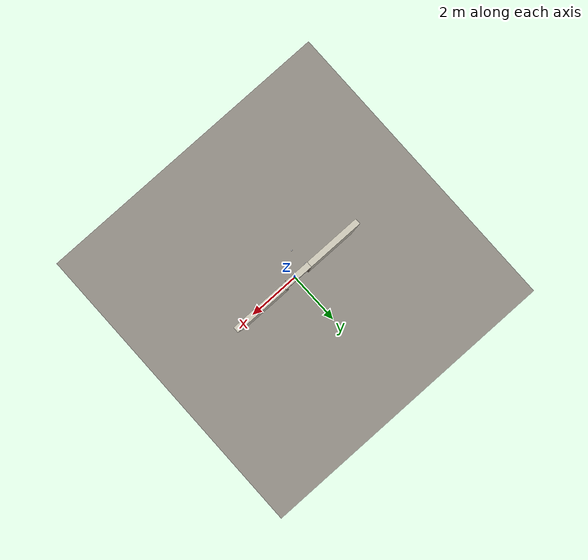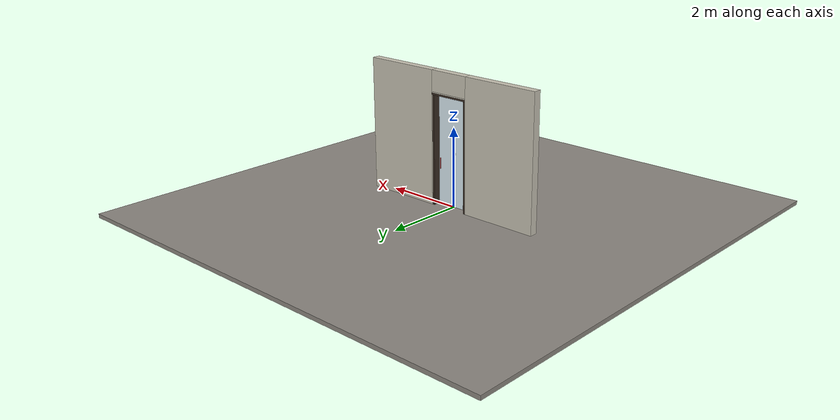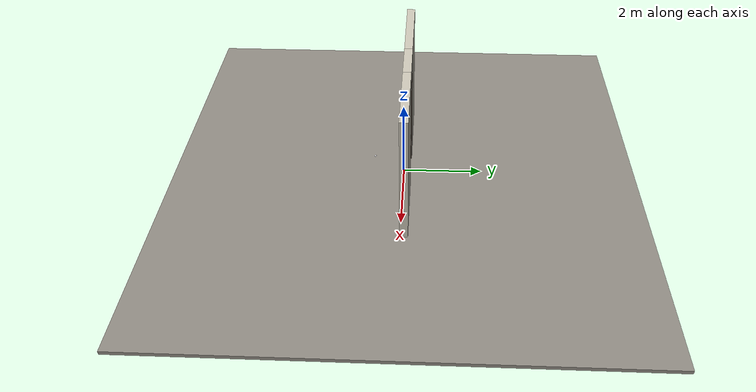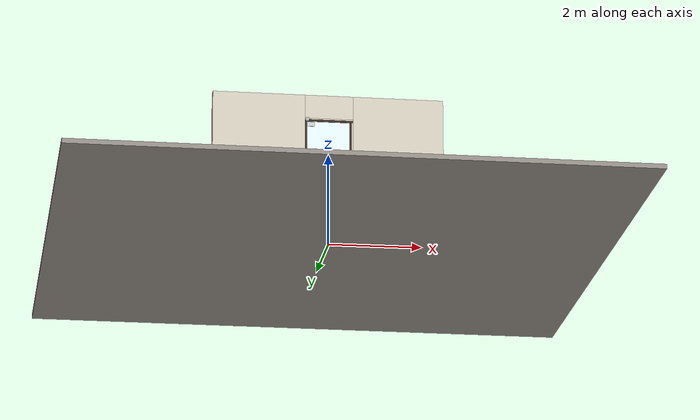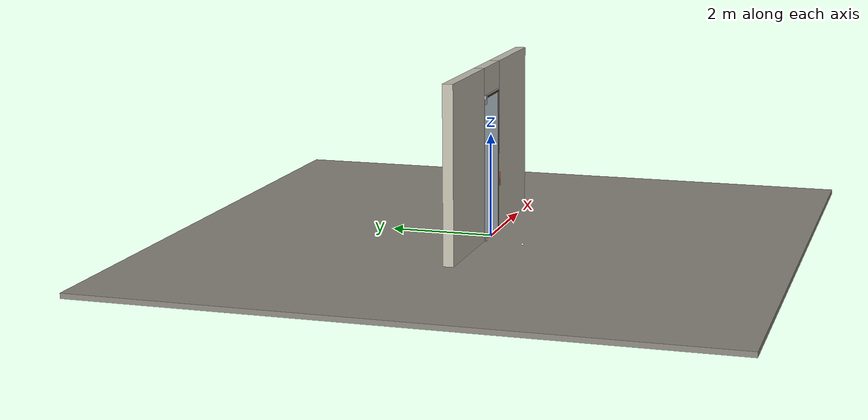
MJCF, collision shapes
<?xml version="1.0" ?>
<mujoco model="db0411_swing_single_full">
  <compiler angle="radian" meshdir="../../hardware" texturedir="../../textures" autolimits="true" inertiafromgeom="false"/>
  <option timestep="0.002" integrator="implicitfast" cone="elliptic" impratio="10" noslip_iterations="3">
    <flag multiccd="enable"/>
  </option>
  <size memory="16M"/>
  <default>
    <geom condim="4" solref="0.005 1" solimp="0.95 0.99 0.001"/>
    <joint solreflimit="0.005 1" solimplimit="0.95 0.99 0.001"/>
    <tendon solreflimit="0.005 1"/>
    <equality solref="0.002 1"/>
  </default>
  <visual>
    <headlight ambient="0.4 0.4 0.4" diffuse="0.7 0.7 0.7" specular="0.2 0.2 0.2"/>
    <quality shadowsize="4096"/>
    <map znear="0.01" zfar="60"/>
  </visual>
  <asset>
    <mesh name="exit_sign_a6449bfa2c" file="exit_sign_a6449bfa2c.obj"/>
    <mesh name="pull_f8d79d6331" file="pull_f8d79d6331.obj"/>
    <material name="mat_floor" rgba="0.55 0.53 0.5 1" specular="0.2" shininess="0.15" reflectance="0"/>
    <material name="mat_wall" rgba="0.78 0.76 0.7 1" specular="0.2" shininess="0.1" reflectance="0"/>
    <material name="mat_leaf" rgba="0.85 0.92 0.95 0.25" specular="0.2" shininess="0.95" reflectance="0.1"/>
    <material name="mat_glass_leaf" rgba="0.85 0.92 0.95 0.25" specular="0.2" shininess="0.95" reflectance="0.1"/>
    <material name="mat_patch" rgba="0.75 0.76 0.77 1" specular="0.8" shininess="0.65" reflectance="0.4"/>
    <material name="mat_hinge" rgba="0.65 0.66 0.68 1" specular="0.74" shininess="0.5" reflectance="0.36"/>
    <material name="mat_op_stainless" rgba="0.75 0.76 0.77 1" specular="0.8" shininess="0.65" reflectance="0.4"/>
    <material name="mat_frame" rgba="0.22 0.17 0.13 1" specular="0.8" shininess="0.6" reflectance="0.4"/>
    <material name="mat_closer" rgba="0.22 0.17 0.13 1" specular="0.8" shininess="0.6" reflectance="0.4"/>
    <material name="mat_exit_sign" rgba="0.85 0.1 0.1 1" specular="0.2" shininess="0.6" reflectance="0"/>
    <material name="mat_sign_bracket" rgba="0.8 0.81 0.83 1" specular="0.8" shininess="0.6" reflectance="0.4"/>
    <material name="mat_sign" rgba="0.75 0.76 0.77 1" specular="0.8" shininess="0.65" reflectance="0.4"/>
    <material name="mat_stop" rgba="0.9 0.9 0.92 1" specular="0.8" shininess="0.9" reflectance="0.4"/>
    <texture name="skybox" type="skybox" builtin="gradient" rgb1="0.6 0.7 0.85" rgb2="0.9 0.92 0.95" width="256" height="256"/>
  </asset>
  <worldbody>
    <light name="sun" pos="1.5 -2.5 4" dir="-0.3 0.5 -0.8" directional="true" diffuse="0.8 0.8 0.8" specular="0.3 0.3 0.3" castshadow="true"/>
    <light name="fill" pos="-1.5 2.5 3" dir="0.3 -0.5 -0.7" directional="true" diffuse="0.35 0.35 0.4" castshadow="false"/>
    <camera name="robot_view" pos="0 -3.12175 2.27645" xyaxes="1 0 0 0 0.26963 0.962964" fovy="52"/>
    <camera name="far_view" pos="0 3.29575 2.27645" xyaxes="-1 0 0 0 -0.26963 0.962964" fovy="52"/>
    <camera name="iso" pos="2.43865 -2.60835 2.78985" xyaxes="0.741536 0.670913 0 -0.242917 0.268487 0.932151" fovy="46"/>
    <camera name="detail_handle" pos="0.5335 -0.881 1.347" xyaxes="0.97561 0.219512 0 -0.070934 0.315262 0.94635" fovy="38"/>
    <geom name="floor" type="box" size="6 6 0.05" pos="0 0 -0.05" material="mat_floor" group="0" contype="1" conaffinity="1" friction="0.8 0.005 0.0001" density="2400"/>
    <geom name="wall_left" type="box" size="0.99675 0.1 1.678" pos="-1.50325 0.087 1.678" material="mat_wall" group="0" contype="1" conaffinity="1" friction="0.6 0.005 0.0001" density="800"/>
    <geom name="wall_right" type="box" size="0.98175 0.1 1.678" pos="1.51825 0.087 1.678" material="mat_wall" group="0" contype="1" conaffinity="1" friction="0.6 0.005 0.0001" density="800"/>
    <geom name="wall_header" type="box" size="0.5215 0.1 0.2625" pos="0.015 0.087 3.0935" material="mat_wall" group="0" contype="1" conaffinity="1" friction="0.6 0.005 0.0001" density="800"/>
    <geom name="pivot_bottom_socket" type="box" size="0.035 0.035 0.0085" pos="-0.4585 -0.013 -0.0015" material="mat_hinge" group="1" contype="0" conaffinity="0" density="7850"/>
    <geom name="pivot_top_bracket" type="box" size="0.035 0.035 0.0355" pos="-0.4585 -0.013 2.7955" material="mat_hinge" group="1" contype="0" conaffinity="0" density="7850"/>
    <geom name="jamb_hinge" type="box" size="0.0225 0.1 1.378" pos="-0.484 0.087 1.378" material="mat_frame" group="0" contype="1" conaffinity="1" friction="0.6 0.005 0.0001" density="300"/>
    <geom name="jamb_strike" type="box" size="0.0225 0.1 1.378" pos="0.484 0.087 1.378" material="mat_frame" group="0" contype="1" conaffinity="1" friction="0.6 0.005 0.0001" density="300"/>
    <geom name="stud_strike" type="box" size="0.015 0.1 1.378" pos="0.5215 0.087 1.378" material="mat_wall" group="0" contype="1" conaffinity="1" friction="0.6 0.005 0.0001" density="500"/>
    <geom name="jamb_head" type="box" size="0.5215 0.1 0.0225" pos="0.015 0.087 2.7785" material="mat_frame" group="0" contype="1" conaffinity="1" friction="0.6 0.005 0.0001" density="300"/>
    <geom name="head_stud" type="box" size="0.5215 0.1 0.015" pos="0.015 0.087 2.816" material="mat_wall" group="0" contype="1" conaffinity="1" friction="0.6 0.005 0.0001" density="500"/>
    <geom name="auto_operator_header" type="box" size="0.34 0.055 0.055" pos="0 0.071 2.827" material="mat_closer" group="0" contype="1" conaffinity="1" friction="0.6 0.005 0.0001" density="1500"/>
    <geom name="exit_sign" type="mesh" mesh="exit_sign_a6449bfa2c" pos="0 0.15 3.056" material="mat_exit_sign" group="2" contype="0" conaffinity="0" density="500"/>
    <geom name="exit_sign_bracket" type="box" size="0.05775 0.00875 0.063" pos="0 0.15 2.8935" material="mat_sign_bracket" group="2" contype="0" conaffinity="0" density="7850"/>
    <geom name="floor_stop_dome" type="sphere" size="0.025" pos="-0.546397 -0.788189 0" material="mat_stop" group="0" contype="1" conaffinity="1" friction="0.6 0.005 0.0001" density="7000"/>
    <site name="approach_point" pos="0 -1.5 0" quat="1 0 0 0" size="0.05" rgba="0.2 0.9 0.2 0.5" group="4"/>
    <site name="goal_point" pos="0 1.5 0" quat="1 0 0 0" size="0.05" rgba="0.2 0.9 0.2 0.5" group="4"/>
    <site name="door_plane_center" pos="0 0 1.378" quat="1 0 0 0" size="0.02" rgba="0.2 0.9 0.2 0.5" group="4"/>
    <body name="leaf" pos="-0.4615 0 0">
      <inertial pos="0.568266 0.001914 1.360405" mass="87.46306" quat="0.526949 0.525774 0.470109 -0.47422" diaginertia="6.235907936 46.036257694 51.926704878"/>
      <joint name="leaf_hinge" type="hinge" axis="0 0 -1" pos="0.003 -0.013 0" limited="true" range="0 1.658063" solreflimit="0.02 1" damping="15.345723" frictionloss="2.083662" stiffness="18.060903" springref="-2.335431" armature="0.02"/>
      <geom name="leaf_glass" type="box" size="0.457 0.006 1.3715" pos="0.463 0 1.3805" material="mat_glass_leaf" group="0" contype="1" conaffinity="1" friction="0.4 0.005 0.0001" density="1"/>
      <geom name="leaf_patch_bot" type="box" size="0.08 0.014 0.05" pos="0.086 0 0.069" material="mat_patch" group="1" contype="0" conaffinity="0" density="1"/>
      <geom name="leaf_patch_top" type="box" size="0.08 0.014 0.05" pos="0.086 0 2.692" material="mat_patch" group="1" contype="0" conaffinity="0" density="1"/>
      <geom name="pivot_bottom" type="cylinder" size="0.014 0.004" pos="0.003 -0.013 0.004" material="mat_hinge" group="1" contype="0" conaffinity="0" density="7850"/>
      <geom name="pivot_top" type="cylinder" size="0.014 0.004" pos="0.003 -0.013 2.756" material="mat_hinge" group="1" contype="0" conaffinity="0" density="7850"/>
      <geom name="leaf_pull_n" type="mesh" mesh="pull_f8d79d6331" pos="0.815 -0.006 1.067" quat="0.707107 0.707107 0 0" material="mat_op_stainless" group="1" contype="0" conaffinity="0" density="3000"/>
      <geom name="leaf_pull_col_n" type="capsule" size="0.0125 0.13" pos="0.815 -0.081 1.067" material="mat_op_stainless" group="3" contype="1" conaffinity="1" rgba="0.8 0.3 0.3 0.25" friction="0.7 0.01 0.0001" density="3000"/>
      <geom name="leaf_pull_p" type="mesh" mesh="pull_f8d79d6331" pos="0.815 0.006 1.067" quat="-0.707107 0.707107 0 0" material="mat_op_stainless" group="1" contype="0" conaffinity="0" density="3000"/>
      <geom name="leaf_pull_col_p" type="capsule" size="0.0125 0.13" pos="0.815 0.081 1.067" material="mat_op_stainless" group="3" contype="1" conaffinity="1" rgba="0.8 0.3 0.3 0.25" friction="0.7 0.01 0.0001" density="3000"/>
      <geom name="auto_operator_arm" type="box" size="0.22 0.008 0.008" pos="0.25 0.036 2.723" material="mat_closer" group="1" contype="0" conaffinity="0" density="2700"/>
      <geom name="auto_operator_arm_shoe" type="box" size="0.03 0.016 0.014" pos="0.44 0.022 2.723" material="mat_closer" group="1" contype="0" conaffinity="0" density="2700"/>
      <geom name="sign_push" type="box" size="0.06 0.001 0.03" pos="0.463 0.007 1.359" material="mat_sign" group="2" contype="0" conaffinity="0" density="7900"/>
      <geom name="sign_pull" type="box" size="0.06 0.001 0.03" pos="0.463 -0.007 1.359" material="mat_sign" group="2" contype="0" conaffinity="0" density="7900"/>
      <site name="leaf_pull_grip_n" pos="0.815 -0.081 1.067" quat="1 0 0 0" size="0.012" rgba="0.2 0.9 0.2 0.5" group="4"/>
      <site name="leaf_pull_grip_p" pos="0.815 0.081 1.067" quat="1 0 0 0" size="0.012" rgba="0.2 0.9 0.2 0.5" group="4"/>
      <site name="leaf_edge_mid" pos="0.92 0 1.3715" quat="1 0 0 0" size="0.02" rgba="0.2 0.9 0.2 0.5" group="4"/>
    </body>
  </worldbody>
  <sensor>
    <jointpos name="leaf_hinge_pos" joint="leaf_hinge"/>
    <jointvel name="leaf_hinge_vel" joint="leaf_hinge"/>
  </sensor>
</mujoco>
